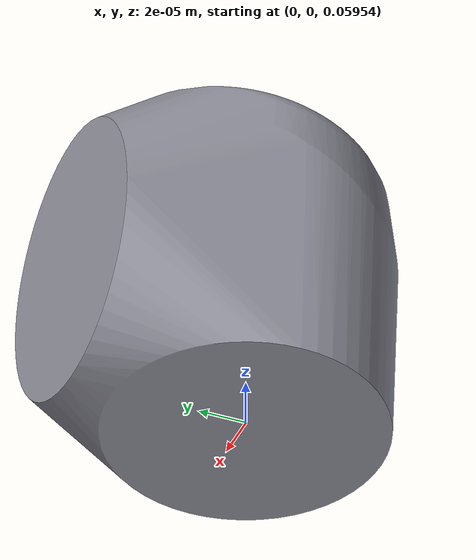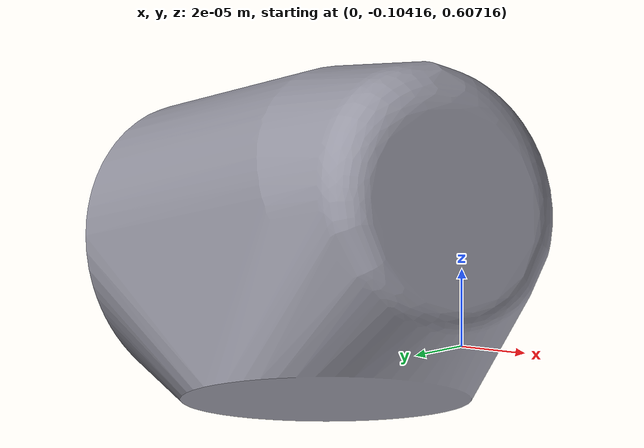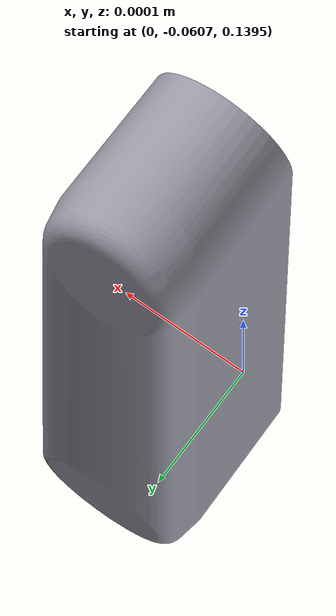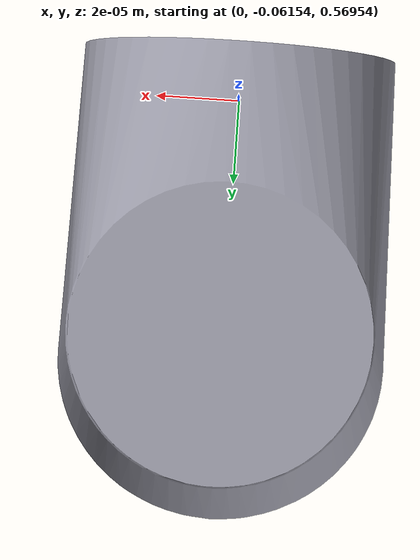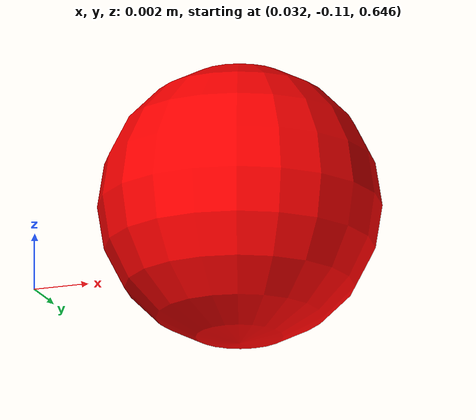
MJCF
<mujoco model="fr_arm_only">
  <compiler angle="radian" autolimits="true" />

  <option integrator="implicitfast" timestep="0.002"/>

  <default>
    <default class="arm">
      <material specular="0.5" shininess="0.25"/>
      <joint armature="0.1"/>
      <general gaintype="fixed" biastype="affine" gainprm="2000" biasprm="0 -2000 -400"/>
      <default class="size3">
        <joint range="-6.28319 6.28319"/>
        <general ctrlrange="-6.2831 6.2831" forcerange="-150 150"/>
        <default class="size3_limited">
          <joint range="-3.1415 3.1415"/>
          <general ctrlrange="-3.1415 3.1415" forcerange="-150 150"/>
        </default>
      </default>
      <default class="size1">
        <joint range="-6.28319 6.28319"/>
        <general gainprm="500" biasprm="0 -500 -100" ctrlrange="-6.2831 6.2831" forcerange="-28 28"/>
      </default>
      <default class="visual">
        <geom type="mesh" contype="0" conaffinity="0" group="2"/>
      </default>
      <default class="collision">
        <geom type="capsule" group="3"/>
      </default>
    </default>
  </default>

  <asset>
    <mesh name="base"      file="../../robots/ur5e/meshes/base.stl"      scale="0.001 0.001 0.001"/>
    <mesh name="shoulder"   file="../../robots/ur5e/meshes/shoulder.stl"   scale="0.001 0.001 0.001"/>
    <mesh name="upperarm"   file="../../robots/ur5e/meshes/upperarm.stl"   scale="0.001 0.001 0.001"/>
    <mesh name="forearm"    file="../../robots/ur5e/meshes/forearm.stl"    scale="0.001 0.001 0.001"/>
    <mesh name="wrist1"     file="../../robots/ur5e/meshes/wrist1.stl"     scale="0.001 0.001 0.001"/>
    <mesh name="wrist2"     file="../../robots/ur5e/meshes/wrist2.stl"     scale="0.001 0.001 0.001"/>

    <material name="arm_dark"   rgba="0.15 0.15 0.15 1" specular="0.3" shininess="0.5"/>
    <material name="arm_metal"  rgba="0.6 0.6 0.65 1"   specular="0.7" shininess="0.8"/>
  </asset>

  <worldbody>
    <light name="spotlight" mode="targetbodycom" target="wrist_2_link" pos="0 -1 2"/>

    <body name="base" childclass="arm">
      <inertial mass="4.0" pos="0 0 0" diaginertia="0.00443333156 0.00443333156 0.0072"/>
      <geom mesh="base" material="arm_dark" class="visual"/>

      <body name="shoulder_link" pos="0 0 0.0596">
        <inertial mass="3.7" pos="0 0 0" diaginertia="0.0102675 0.0102675 0.00666"/>
        <joint name="shoulder_pan_joint" class="size3" axis="0 0 1" range="-6.28319 6.28319"/>
        <geom mesh="shoulder" material="arm_metal" class="visual"/>
        <geom class="collision" size="0.06 0.06" pos="0 0 -0.04"/>

        <body name="upper_arm_link" pos="0 -0.0606 0.08">
          <inertial mass="8.393" pos="0 0 0" diaginertia="0.133886 0.133886 0.0151074"/>
          <joint name="shoulder_lift_joint" class="size3" axis="0 1 0" range="-6.28319 6.28319"/>
          <geom mesh="upperarm" material="arm_metal" class="visual"/>
          <geom class="collision" size="0.05 0.1" pos="0 0 0.1"/>

          <body name="forearm_link" pos="0 0 0.215">
            <inertial mass="2.275" pos="0 0 0" diaginertia="0.0312094 0.0312094 0.004095"/>
            <joint name="elbow_joint" class="size3_limited" axis="0 1 0" range="-3.1415 3.1415"/>
            <geom mesh="forearm" material="arm_metal" class="visual"/>
            <geom class="collision" size="0.038 0.1" pos="0 0 0.1"/>

            <body name="wrist_1_link" pos="0 -0.001 0.215">
              <inertial mass="1.219" pos="0 0 0" diaginertia="0.0025599 0.0025599 0.0021942"/>
              <joint name="wrist_1_joint" class="size1" axis="0 1 0" range="-6.28319 6.28319"/>
              <geom mesh="wrist1" material="arm_metal" class="visual"/>
              <geom class="collision" size="0.04 0.04" pos="0 -0.02 0"/>

              <body name="wrist_2_link" pos="0 -0.0425 0.0375">
                <inertial mass="1.219" pos="0 0 0" diaginertia="0.0025599 0.0025599 0.0021942"/>
                <joint name="wrist_2_joint" class="size1" axis="0 0 1" range="-6.28319 6.28319"/>
                <geom mesh="wrist2" material="arm_metal" class="visual"/>
                <geom class="collision" size="0.04 0.04" pos="0 0 0.02"/>

                <body name="wrist_3_link" pos="0.0375 0 0.043">
                  <inertial mass="0.1" pos="0 0 0" diaginertia="0.0001 0.0001 0.0001"/>
                  <joint name="wrist_3_joint" class="size1" axis="1 0 0" range="-6.28319 6.28319"/>
<site name="tool0" pos="0 0 0" size="0.005" rgba="1 0 0 1"/>
                </body> <!-- wrist_3_link -->

              </body> <!-- wrist_2_link -->
            </body> <!-- wrist_1_link -->
          </body> <!-- forearm_link -->
        </body> <!-- upper_arm_link -->
      </body> <!-- shoulder_link -->
    </body> <!-- base -->
  </worldbody>

  <actuator>
    <general class="size3" name="shoulder_pan" joint="shoulder_pan_joint"/>
    <general class="size3" name="shoulder_lift" joint="shoulder_lift_joint"/>
    <general class="size3_limited" name="elbow" joint="elbow_joint"/>
    <general class="size1" name="wrist_1" joint="wrist_1_joint"/>
    <general class="size1" name="wrist_2" joint="wrist_2_joint"/>
    <general class="size1" name="wrist_3" joint="wrist_3_joint"/>
  </actuator>

  <sensor>
    <jointpos name="jp_shoulder_pan"  joint="shoulder_pan_joint"/>
    <jointpos name="jp_shoulder_lift" joint="shoulder_lift_joint"/>
    <jointpos name="jp_elbow"         joint="elbow_joint"/>
    <jointpos name="jp_wrist_1"       joint="wrist_1_joint"/>
    <jointpos name="jp_wrist_2"       joint="wrist_2_joint"/>
    <jointpos name="jp_wrist_3"       joint="wrist_3_joint"/>
    <jointvel name="jv_shoulder_pan"  joint="shoulder_pan_joint"/>
    <jointvel name="jv_shoulder_lift" joint="shoulder_lift_joint"/>
    <jointvel name="jv_elbow"         joint="elbow_joint"/>
    <jointvel name="jv_wrist_1"       joint="wrist_1_joint"/>
    <jointvel name="jv_wrist_2"       joint="wrist_2_joint"/>
    <jointvel name="jv_wrist_3"       joint="wrist_3_joint"/>
    <framepos name="tool0_pos" objtype="site" objname="tool0"/>
  </sensor>

  <keyframe>
    <key name="home"
      qpos="0 -0.033929 1.613522 0.033929 0.033929 -1.528071"
      ctrl="0 -0.033929 1.613522 0.033929 0.033929 -1.528071"/>
    <key name="pre_grasp"
      qpos="0 -0.31415 1.8852 0 0 -1.57075"
      ctrl="0 -0.31415 1.8852 0 0 -1.57075"/>
  </keyframe>
</mujoco>
